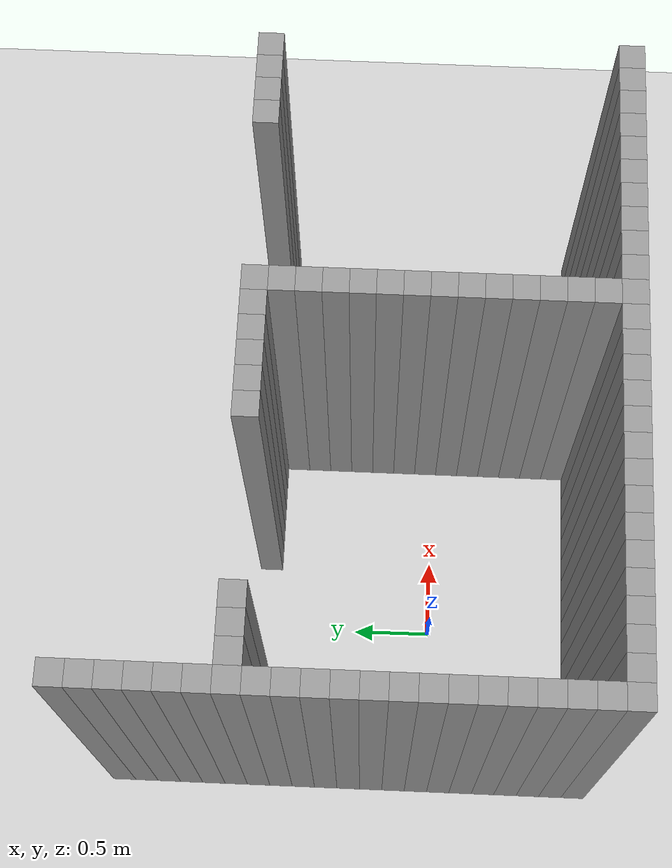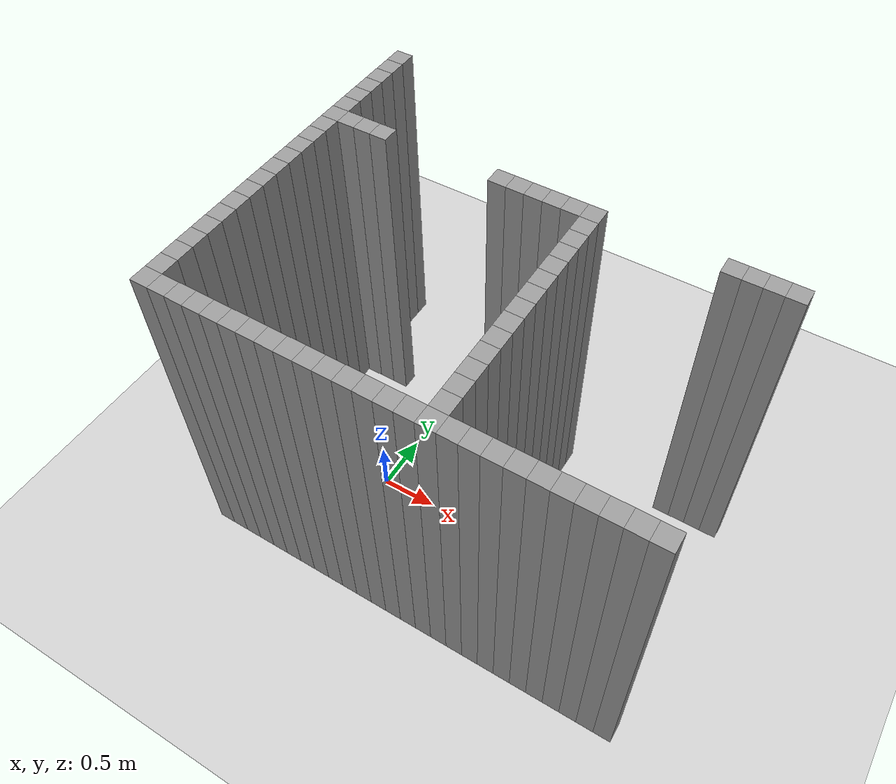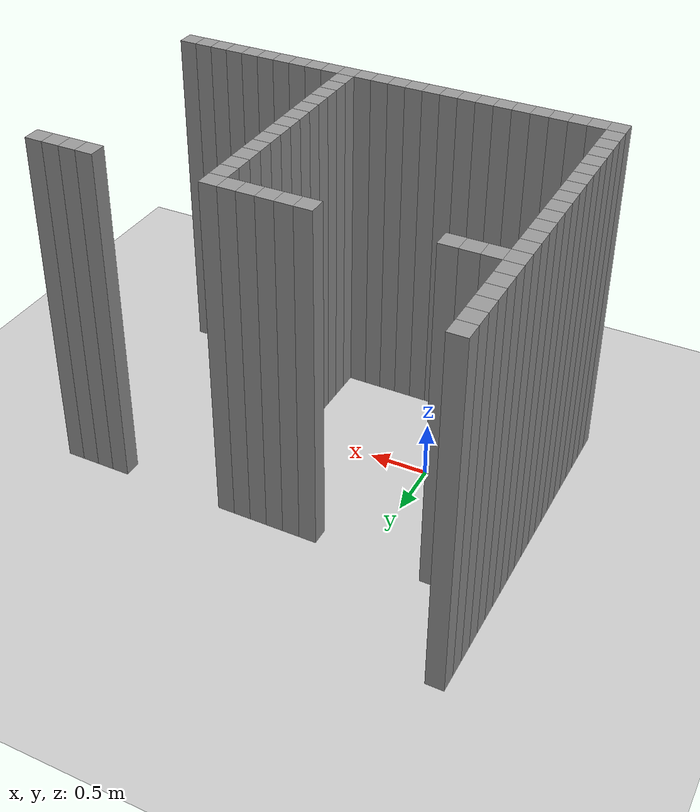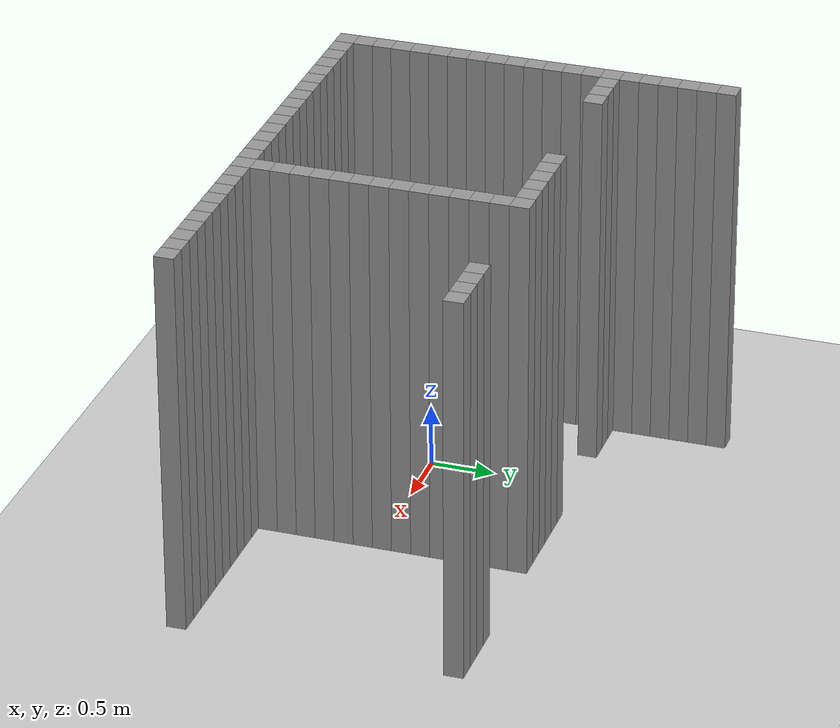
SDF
<sdf version="1.7">
 <world name="default">
  <model name="ground_plane">
   <static>1</static>
   <link name="link">
    <collision name="collision">
     <geometry><plane><normal>0 0 1</normal><size>100 100</size></plane></geometry>
     <surface>
      <contact><collide_bitmask>65535</collide_bitmask></contact>
      <friction><ode><mu>100</mu><mu2>50</mu2></ode></friction>
     </surface>
    </collision>
    <visual name="visual">
     <cast_shadows>0</cast_shadows>
     <geometry><plane><normal>0 0 1</normal><size>100 100</size></plane></geometry>
     <material>
      <script><uri>file://media/materials/scripts/gazebo.material</uri><name>Gazebo/Grey</name></script>
     </material>
    </visual>
   </link>
  </model>
  <model name="image45001">
   <pose>-1 -1 0 0 -0 0</pose>
   <link name="Wall_0">
    <collision name="Wall_0_Collision">
     <geometry><box><size>0.15 0.15 3</size></box></geometry>
     <pose>0 0 1.5 0 -0 0</pose>
    </collision>
    <visual name="Wall_0_Visual">
     <pose>0 0 1.5 0 -0 0</pose>
     <geometry><box><size>0.15 0.15 3</size></box></geometry>
     <material>
      <script><uri>file://media/materials/scripts/gazebo.material</uri><name>Gazebo/Grey</name></script>
      <ambient>1 1 1 1</ambient>
     </material>
     <meta><layer>0</layer></meta>
    </visual>
   </link>
   <link name="Wall_1">
    <collision name="Wall_1_Collision">
     <geometry><box><size>0.15 0.15 3</size></box></geometry>
     <pose>0 0 1.5 0 -0 0</pose>
    </collision>
    <visual name="Wall_1_Visual">
     <pose>0 0 1.5 0 -0 0</pose>
     <geometry><box><size>0.15 0.15 3</size></box></geometry>
     <material>
      <script><uri>file://media/materials/scripts/gazebo.material</uri><name>Gazebo/Grey</name></script>
      <ambient>1 1 1 1</ambient>
     </material>
     <meta><layer>0</layer></meta>
    </visual>
    <pose>0.0 0.15 0 0 -0 0</pose>
   </link>
   <link name="Wall_2">
    <collision name="Wall_2_Collision">
     <geometry><box><size>0.15 0.15 3</size></box></geometry>
     <pose>0 0 1.5 0 -0 0</pose>
    </collision>
    <visual name="Wall_2_Visual">
     <pose>0 0 1.5 0 -0 0</pose>
     <geometry><box><size>0.15 0.15 3</size></box></geometry>
     <material>
      <script><uri>file://media/materials/scripts/gazebo.material</uri><name>Gazebo/Grey</name></script>
      <ambient>1 1 1 1</ambient>
     </material>
     <meta><layer>0</layer></meta>
    </visual>
    <pose>0.0 0.3 0 0 -0 0</pose>
   </link>
   <link name="Wall_3">
    <collision name="Wall_3_Collision">
     <geometry><box><size>0.15 0.15 3</size></box></geometry>
     <pose>0 0 1.5 0 -0 0</pose>
    </collision>
    <visual name="Wall_3_Visual">
     <pose>0 0 1.5 0 -0 0</pose>
     <geometry><box><size>0.15 0.15 3</size></box></geometry>
     <material>
      <script><uri>file://media/materials/scripts/gazebo.material</uri><name>Gazebo/Grey</name></script>
      <ambient>1 1 1 1</ambient>
     </material>
     <meta><layer>0</layer></meta>
    </visual>
    <pose>0.0 0.44999999999999996 0 0 -0 0</pose>
   </link>
   <link name="Wall_4">
    <collision name="Wall_4_Collision">
     <geometry><box><size>0.15 0.15 3</size></box></geometry>
     <pose>0 0 1.5 0 -0 0</pose>
    </collision>
    <visual name="Wall_4_Visual">
     <pose>0 0 1.5 0 -0 0</pose>
     <geometry><box><size>0.15 0.15 3</size></box></geometry>
     <material>
      <script><uri>file://media/materials/scripts/gazebo.material</uri><name>Gazebo/Grey</name></script>
      <ambient>1 1 1 1</ambient>
     </material>
     <meta><layer>0</layer></meta>
    </visual>
    <pose>0.0 0.6 0 0 -0 0</pose>
   </link>
   <link name="Wall_5">
    <collision name="Wall_5_Collision">
     <geometry><box><size>0.15 0.15 3</size></box></geometry>
     <pose>0 0 1.5 0 -0 0</pose>
    </collision>
    <visual name="Wall_5_Visual">
     <pose>0 0 1.5 0 -0 0</pose>
     <geometry><box><size>0.15 0.15 3</size></box></geometry>
     <material>
      <script><uri>file://media/materials/scripts/gazebo.material</uri><name>Gazebo/Grey</name></script>
      <ambient>1 1 1 1</ambient>
     </material>
     <meta><layer>0</layer></meta>
    </visual>
    <pose>0.0 0.75 0 0 -0 0</pose>
   </link>
   <link name="Wall_6">
    <collision name="Wall_6_Collision">
     <geometry><box><size>0.15 0.15 3</size></box></geometry>
     <pose>0 0 1.5 0 -0 0</pose>
    </collision>
    <visual name="Wall_6_Visual">
     <pose>0 0 1.5 0 -0 0</pose>
     <geometry><box><size>0.15 0.15 3</size></box></geometry>
     <material>
      <script><uri>file://media/materials/scripts/gazebo.material</uri><name>Gazebo/Grey</name></script>
      <ambient>1 1 1 1</ambient>
     </material>
     <meta><layer>0</layer></meta>
    </visual>
    <pose>0.0 0.8999999999999999 0 0 -0 0</pose>
   </link>
   <link name="Wall_7">
    <collision name="Wall_7_Collision">
     <geometry><box><size>0.15 0.15 3</size></box></geometry>
     <pose>0 0 1.5 0 -0 0</pose>
    </collision>
    <visual name="Wall_7_Visual">
     <pose>0 0 1.5 0 -0 0</pose>
     <geometry><box><size>0.15 0.15 3</size></box></geometry>
     <material>
      <script><uri>file://media/materials/scripts/gazebo.material</uri><name>Gazebo/Grey</name></script>
      <ambient>1 1 1 1</ambient>
     </material>
     <meta><layer>0</layer></meta>
    </visual>
    <pose>0.0 1.05 0 0 -0 0</pose>
   </link>
   <link name="Wall_8">
    <collision name="Wall_8_Collision">
     <geometry><box><size>0.15 0.15 3</size></box></geometry>
     <pose>0 0 1.5 0 -0 0</pose>
    </collision>
    <visual name="Wall_8_Visual">
     <pose>0 0 1.5 0 -0 0</pose>
     <geometry><box><size>0.15 0.15 3</size></box></geometry>
     <material>
      <script><uri>file://media/materials/scripts/gazebo.material</uri><name>Gazebo/Grey</name></script>
      <ambient>1 1 1 1</ambient>
     </material>
     <meta><layer>0</layer></meta>
    </visual>
    <pose>0.0 1.2 0 0 -0 0</pose>
   </link>
   <link name="Wall_9">
    <collision name="Wall_9_Collision">
     <geometry><box><size>0.15 0.15 3</size></box></geometry>
     <pose>0 0 1.5 0 -0 0</pose>
    </collision>
    <visual name="Wall_9_Visual">
     <pose>0 0 1.5 0 -0 0</pose>
     <geometry><box><size>0.15 0.15 3</size></box></geometry>
     <material>
      <script><uri>file://media/materials/scripts/gazebo.material</uri><name>Gazebo/Grey</name></script>
      <ambient>1 1 1 1</ambient>
     </material>
     <meta><layer>0</layer></meta>
    </visual>
    <pose>0.0 1.3499999999999999 0 0 -0 0</pose>
   </link>
   <link name="Wall_10">
    <collision name="Wall_10_Collision">
     <geometry><box><size>0.15 0.15 3</size></box></geometry>
     <pose>0 0 1.5 0 -0 0</pose>
    </collision>
    <visual name="Wall_10_Visual">
     <pose>0 0 1.5 0 -0 0</pose>
     <geometry><box><size>0.15 0.15 3</size></box></geometry>
     <material>
      <script><uri>file://media/materials/scripts/gazebo.material</uri><name>Gazebo/Grey</name></script>
      <ambient>1 1 1 1</ambient>
     </material>
     <meta><layer>0</layer></meta>
    </visual>
    <pose>0.0 1.5 0 0 -0 0</pose>
   </link>
   <link name="Wall_11">
    <collision name="Wall_11_Collision">
     <geometry><box><size>0.15 0.15 3</size></box></geometry>
     <pose>0 0 1.5 0 -0 0</pose>
    </collision>
    <visual name="Wall_11_Visual">
     <pose>0 0 1.5 0 -0 0</pose>
     <geometry><box><size>0.15 0.15 3</size></box></geometry>
     <material>
      <script><uri>file://media/materials/scripts/gazebo.material</uri><name>Gazebo/Grey</name></script>
      <ambient>1 1 1 1</ambient>
     </material>
     <meta><layer>0</layer></meta>
    </visual>
    <pose>0.0 1.65 0 0 -0 0</pose>
   </link>
   <link name="Wall_12">
    <collision name="Wall_12_Collision">
     <geometry><box><size>0.15 0.15 3</size></box></geometry>
     <pose>0 0 1.5 0 -0 0</pose>
    </collision>
    <visual name="Wall_12_Visual">
     <pose>0 0 1.5 0 -0 0</pose>
     <geometry><box><size>0.15 0.15 3</size></box></geometry>
     <material>
      <script><uri>file://media/materials/scripts/gazebo.material</uri><name>Gazebo/Grey</name></script>
      <ambient>1 1 1 1</ambient>
     </material>
     <meta><layer>0</layer></meta>
    </visual>
    <pose>0.0 1.7999999999999998 0 0 -0 0</pose>
   </link>
   <link name="Wall_13">
    <collision name="Wall_13_Collision">
     <geometry><box><size>0.15 0.15 3</size></box></geometry>
     <pose>0 0 1.5 0 -0 0</pose>
    </collision>
    <visual name="Wall_13_Visual">
     <pose>0 0 1.5 0 -0 0</pose>
     <geometry><box><size>0.15 0.15 3</size></box></geometry>
     <material>
      <script><uri>file://media/materials/scripts/gazebo.material</uri><name>Gazebo/Grey</name></script>
      <ambient>1 1 1 1</ambient>
     </material>
     <meta><layer>0</layer></meta>
    </visual>
    <pose>0.0 1.95 0 0 -0 0</pose>
   </link>
   <link name="Wall_14">
    <collision name="Wall_14_Collision">
     <geometry><box><size>0.15 0.15 3</size></box></geometry>
     <pose>0 0 1.5 0 -0 0</pose>
    </collision>
    <visual name="Wall_14_Visual">
     <pose>0 0 1.5 0 -0 0</pose>
     <geometry><box><size>0.15 0.15 3</size></box></geometry>
     <material>
      <script><uri>file://media/materials/scripts/gazebo.material</uri><name>Gazebo/Grey</name></script>
      <ambient>1 1 1 1</ambient>
     </material>
     <meta><layer>0</layer></meta>
    </visual>
    <pose>0.0 2.1 0 0 -0 0</pose>
   </link>
   <link name="Wall_15">
    <collision name="Wall_15_Collision">
     <geometry><box><size>0.15 0.15 3</size></box></geometry>
     <pose>0 0 1.5 0 -0 0</pose>
    </collision>
    <visual name="Wall_15_Visual">
     <pose>0 0 1.5 0 -0 0</pose>
     <geometry><box><size>0.15 0.15 3</size></box></geometry>
     <material>
      <script><uri>file://media/materials/scripts/gazebo.material</uri><name>Gazebo/Grey</name></script>
      <ambient>1 1 1 1</ambient>
     </material>
     <meta><layer>0</layer></meta>
    </visual>
    <pose>0.0 2.25 0 0 -0 0</pose>
   </link>
   <link name="Wall_16">
    <collision name="Wall_16_Collision">
     <geometry><box><size>0.15 0.15 3</size></box></geometry>
     <pose>0 0 1.5 0 -0 0</pose>
    </collision>
    <visual name="Wall_16_Visual">
     <pose>0 0 1.5 0 -0 0</pose>
     <geometry><box><size>0.15 0.15 3</size></box></geometry>
     <material>
      <script><uri>file://media/materials/scripts/gazebo.material</uri><name>Gazebo/Grey</name></script>
      <ambient>1 1 1 1</ambient>
     </material>
     <meta><layer>0</layer></meta>
    </visual>
    <pose>0.0 2.4 0 0 -0 0</pose>
   </link>
   <link name="Wall_17">
    <collision name="Wall_17_Collision">
     <geometry><box><size>0.15 0.15 3</size></box></geometry>
     <pose>0 0 1.5 0 -0 0</pose>
    </collision>
    <visual name="Wall_17_Visual">
     <pose>0 0 1.5 0 -0 0</pose>
     <geometry><box><size>0.15 0.15 3</size></box></geometry>
     <material>
      <script><uri>file://media/materials/scripts/gazebo.material</uri><name>Gazebo/Grey</name></script>
      <ambient>1 1 1 1</ambient>
     </material>
     <meta><layer>0</layer></meta>
    </visual>
    <pose>0.0 2.55 0 0 -0 0</pose>
   </link>
   <link name="Wall_18">
    <collision name="Wall_18_Collision">
     <geometry><box><size>0.15 0.15 3</size></box></geometry>
     <pose>0 0 1.5 0 -0 0</pose>
    </collision>
    <visual name="Wall_18_Visual">
     <pose>0 0 1.5 0 -0 0</pose>
     <geometry><box><size>0.15 0.15 3</size></box></geometry>
     <material>
      <script><uri>file://media/materials/scripts/gazebo.material</uri><name>Gazebo/Grey</name></script>
      <ambient>1 1 1 1</ambient>
     </material>
     <meta><layer>0</layer></meta>
    </visual>
    <pose>0.0 2.6999999999999997 0 0 -0 0</pose>
   </link>
   <link name="Wall_19">
    <collision name="Wall_19_Collision">
     <geometry><box><size>0.15 0.15 3</size></box></geometry>
     <pose>0 0 1.5 0 -0 0</pose>
    </collision>
    <visual name="Wall_19_Visual">
     <pose>0 0 1.5 0 -0 0</pose>
     <geometry><box><size>0.15 0.15 3</size></box></geometry>
     <material>
      <script><uri>file://media/materials/scripts/gazebo.material</uri><name>Gazebo/Grey</name></script>
      <ambient>1 1 1 1</ambient>
     </material>
     <meta><layer>0</layer></meta>
    </visual>
    <pose>0.0 2.85 0 0 -0 0</pose>
   </link>
   <link name="Wall_20">
    <collision name="Wall_20_Collision">
     <geometry><box><size>0.15 0.15 3</size></box></geometry>
     <pose>0 0 1.5 0 -0 0</pose>
    </collision>
    <visual name="Wall_20_Visual">
     <pose>0 0 1.5 0 -0 0</pose>
     <geometry><box><size>0.15 0.15 3</size></box></geometry>
     <material>
      <script><uri>file://media/materials/scripts/gazebo.material</uri><name>Gazebo/Grey</name></script>
      <ambient>1 1 1 1</ambient>
     </material>
     <meta><layer>0</layer></meta>
    </visual>
    <pose>0.0 3.0 0 0 -0 0</pose>
   </link>
   <link name="Wall_60">
    <collision name="Wall_60_Collision">
     <geometry><box><size>0.15 0.15 3</size></box></geometry>
     <pose>0 0 1.5 0 -0 0</pose>
    </collision>
    <visual name="Wall_60_Visual">
     <pose>0 0 1.5 0 -0 0</pose>
     <geometry><box><size>0.15 0.15 3</size></box></geometry>
     <material>
      <script><uri>file://media/materials/scripts/gazebo.material</uri><name>Gazebo/Grey</name></script>
      <ambient>1 1 1 1</ambient>
     </material>
     <meta><layer>0</layer></meta>
    </visual>
    <pose>0.15 0.0 0 0 -0 0</pose>
   </link>
   <link name="Wall_61">
    <collision name="Wall_61_Collision">
     <geometry><box><size>0.15 0.15 3</size></box></geometry>
     <pose>0 0 1.5 0 -0 0</pose>
    </collision>
    <visual name="Wall_61_Visual">
     <pose>0 0 1.5 0 -0 0</pose>
     <geometry><box><size>0.15 0.15 3</size></box></geometry>
     <material>
      <script><uri>file://media/materials/scripts/gazebo.material</uri><name>Gazebo/Grey</name></script>
      <ambient>1 1 1 1</ambient>
     </material>
     <meta><layer>0</layer></meta>
    </visual>
    <pose>0.15 2.1 0 0 -0 0</pose>
   </link>
   <link name="Wall_65">
    <collision name="Wall_65_Collision">
     <geometry><box><size>0.15 0.15 3</size></box></geometry>
     <pose>0 0 1.5 0 -0 0</pose>
    </collision>
    <visual name="Wall_65_Visual">
     <pose>0 0 1.5 0 -0 0</pose>
     <geometry><box><size>0.15 0.15 3</size></box></geometry>
     <material>
      <script><uri>file://media/materials/scripts/gazebo.material</uri><name>Gazebo/Grey</name></script>
      <ambient>1 1 1 1</ambient>
     </material>
     <meta><layer>0</layer></meta>
    </visual>
    <pose>0.3 0.0 0 0 -0 0</pose>
   </link>
   <link name="Wall_66">
    <collision name="Wall_66_Collision">
     <geometry><box><size>0.15 0.15 3</size></box></geometry>
     <pose>0 0 1.5 0 -0 0</pose>
    </collision>
    <visual name="Wall_66_Visual">
     <pose>0 0 1.5 0 -0 0</pose>
     <geometry><box><size>0.15 0.15 3</size></box></geometry>
     <material>
      <script><uri>file://media/materials/scripts/gazebo.material</uri><name>Gazebo/Grey</name></script>
      <ambient>1 1 1 1</ambient>
     </material>
     <meta><layer>0</layer></meta>
    </visual>
    <pose>0.3 2.1 0 0 -0 0</pose>
   </link>
   <link name="Wall_70">
    <collision name="Wall_70_Collision">
     <geometry><box><size>0.15 0.15 3</size></box></geometry>
     <pose>0 0 1.5 0 -0 0</pose>
    </collision>
    <visual name="Wall_70_Visual">
     <pose>0 0 1.5 0 -0 0</pose>
     <geometry><box><size>0.15 0.15 3</size></box></geometry>
     <material>
      <script><uri>file://media/materials/scripts/gazebo.material</uri><name>Gazebo/Grey</name></script>
      <ambient>1 1 1 1</ambient>
     </material>
     <meta><layer>0</layer></meta>
    </visual>
    <pose>0.44999999999999996 0.0 0 0 -0 0</pose>
   </link>
   <link name="Wall_71">
    <collision name="Wall_71_Collision">
     <geometry><box><size>0.15 0.15 3</size></box></geometry>
     <pose>0 0 1.5 0 -0 0</pose>
    </collision>
    <visual name="Wall_71_Visual">
     <pose>0 0 1.5 0 -0 0</pose>
     <geometry><box><size>0.15 0.15 3</size></box></geometry>
     <material>
      <script><uri>file://media/materials/scripts/gazebo.material</uri><name>Gazebo/Grey</name></script>
      <ambient>1 1 1 1</ambient>
     </material>
     <meta><layer>0</layer></meta>
    </visual>
    <pose>0.44999999999999996 2.1 0 0 -0 0</pose>
   </link>
   <link name="Wall_75">
    <collision name="Wall_75_Collision">
     <geometry><box><size>0.15 0.15 3</size></box></geometry>
     <pose>0 0 1.5 0 -0 0</pose>
    </collision>
    <visual name="Wall_75_Visual">
     <pose>0 0 1.5 0 -0 0</pose>
     <geometry><box><size>0.15 0.15 3</size></box></geometry>
     <material>
      <script><uri>file://media/materials/scripts/gazebo.material</uri><name>Gazebo/Grey</name></script>
      <ambient>1 1 1 1</ambient>
     </material>
     <meta><layer>0</layer></meta>
    </visual>
    <pose>0.6 0.0 0 0 -0 0</pose>
   </link>
   <link name="Wall_79">
    <collision name="Wall_79_Collision">
     <geometry><box><size>0.15 0.15 3</size></box></geometry>
     <pose>0 0 1.5 0 -0 0</pose>
    </collision>
    <visual name="Wall_79_Visual">
     <pose>0 0 1.5 0 -0 0</pose>
     <geometry><box><size>0.15 0.15 3</size></box></geometry>
     <material>
      <script><uri>file://media/materials/scripts/gazebo.material</uri><name>Gazebo/Grey</name></script>
      <ambient>1 1 1 1</ambient>
     </material>
     <meta><layer>0</layer></meta>
    </visual>
    <pose>0.75 0.0 0 0 -0 0</pose>
   </link>
   <link name="Wall_83">
    <collision name="Wall_83_Collision">
     <geometry><box><size>0.15 0.15 3</size></box></geometry>
     <pose>0 0 1.5 0 -0 0</pose>
    </collision>
    <visual name="Wall_83_Visual">
     <pose>0 0 1.5 0 -0 0</pose>
     <geometry><box><size>0.15 0.15 3</size></box></geometry>
     <material>
      <script><uri>file://media/materials/scripts/gazebo.material</uri><name>Gazebo/Grey</name></script>
      <ambient>1 1 1 1</ambient>
     </material>
     <meta><layer>0</layer></meta>
    </visual>
    <pose>0.8999999999999999 0.0 0 0 -0 0</pose>
   </link>
   <link name="Wall_87">
    <collision name="Wall_87_Collision">
     <geometry><box><size>0.15 0.15 3</size></box></geometry>
     <pose>0 0 1.5 0 -0 0</pose>
    </collision>
    <visual name="Wall_87_Visual">
     <pose>0 0 1.5 0 -0 0</pose>
     <geometry><box><size>0.15 0.15 3</size></box></geometry>
     <material>
      <script><uri>file://media/materials/scripts/gazebo.material</uri><name>Gazebo/Grey</name></script>
      <ambient>1 1 1 1</ambient>
     </material>
     <meta><layer>0</layer></meta>
    </visual>
    <pose>1.05 0.0 0 0 -0 0</pose>
   </link>
   <link name="Wall_91">
    <collision name="Wall_91_Collision">
     <geometry><box><size>0.15 0.15 3</size></box></geometry>
     <pose>0 0 1.5 0 -0 0</pose>
    </collision>
    <visual name="Wall_91_Visual">
     <pose>0 0 1.5 0 -0 0</pose>
     <geometry><box><size>0.15 0.15 3</size></box></geometry>
     <material>
      <script><uri>file://media/materials/scripts/gazebo.material</uri><name>Gazebo/Grey</name></script>
      <ambient>1 1 1 1</ambient>
     </material>
     <meta><layer>0</layer></meta>
    </visual>
    <pose>1.2 0.0 0 0 -0 0</pose>
   </link>
   <link name="Wall_95">
    <collision name="Wall_95_Collision">
     <geometry><box><size>0.15 0.15 3</size></box></geometry>
     <pose>0 0 1.5 0 -0 0</pose>
    </collision>
    <visual name="Wall_95_Visual">
     <pose>0 0 1.5 0 -0 0</pose>
     <geometry><box><size>0.15 0.15 3</size></box></geometry>
     <material>
      <script><uri>file://media/materials/scripts/gazebo.material</uri><name>Gazebo/Grey</name></script>
      <ambient>1 1 1 1</ambient>
     </material>
     <meta><layer>0</layer></meta>
    </visual>
    <pose>1.3499999999999999 0.0 0 0 -0 0</pose>
   </link>
   <link name="Wall_109">
    <collision name="Wall_109_Collision">
     <geometry><box><size>0.15 0.15 3</size></box></geometry>
     <pose>0 0 1.5 0 -0 0</pose>
    </collision>
    <visual name="Wall_109_Visual">
     <pose>0 0 1.5 0 -0 0</pose>
     <geometry><box><size>0.15 0.15 3</size></box></geometry>
     <material>
      <script><uri>file://media/materials/scripts/gazebo.material</uri><name>Gazebo/Grey</name></script>
      <ambient>1 1 1 1</ambient>
     </material>
     <meta><layer>0</layer></meta>
    </visual>
    <pose>1.5 0.0 0 0 -0 0</pose>
   </link>
   <link name="Wall_110">
    <collision name="Wall_110_Collision">
     <geometry><box><size>0.15 0.15 3</size></box></geometry>
     <pose>0 0 1.5 0 -0 0</pose>
    </collision>
    <visual name="Wall_110_Visual">
     <pose>0 0 1.5 0 -0 0</pose>
     <geometry><box><size>0.15 0.15 3</size></box></geometry>
     <material>
      <script><uri>file://media/materials/scripts/gazebo.material</uri><name>Gazebo/Grey</name></script>
      <ambient>1 1 1 1</ambient>
     </material>
     <meta><layer>0</layer></meta>
    </visual>
    <pose>1.5 2.1 0 0 -0 0</pose>
   </link>
   <link name="Wall_115">
    <collision name="Wall_115_Collision">
     <geometry><box><size>0.15 0.15 3</size></box></geometry>
     <pose>0 0 1.5 0 -0 0</pose>
    </collision>
    <visual name="Wall_115_Visual">
     <pose>0 0 1.5 0 -0 0</pose>
     <geometry><box><size>0.15 0.15 3</size></box></geometry>
     <material>
      <script><uri>file://media/materials/scripts/gazebo.material</uri><name>Gazebo/Grey</name></script>
      <ambient>1 1 1 1</ambient>
     </material>
     <meta><layer>0</layer></meta>
    </visual>
    <pose>1.65 0.0 0 0 -0 0</pose>
   </link>
   <link name="Wall_116">
    <collision name="Wall_116_Collision">
     <geometry><box><size>0.15 0.15 3</size></box></geometry>
     <pose>0 0 1.5 0 -0 0</pose>
    </collision>
    <visual name="Wall_116_Visual">
     <pose>0 0 1.5 0 -0 0</pose>
     <geometry><box><size>0.15 0.15 3</size></box></geometry>
     <material>
      <script><uri>file://media/materials/scripts/gazebo.material</uri><name>Gazebo/Grey</name></script>
      <ambient>1 1 1 1</ambient>
     </material>
     <meta><layer>0</layer></meta>
    </visual>
    <pose>1.65 2.1 0 0 -0 0</pose>
   </link>
   <link name="Wall_120">
    <collision name="Wall_120_Collision">
     <geometry><box><size>0.15 0.15 3</size></box></geometry>
     <pose>0 0 1.5 0 -0 0</pose>
    </collision>
    <visual name="Wall_120_Visual">
     <pose>0 0 1.5 0 -0 0</pose>
     <geometry><box><size>0.15 0.15 3</size></box></geometry>
     <material>
      <script><uri>file://media/materials/scripts/gazebo.material</uri><name>Gazebo/Grey</name></script>
      <ambient>1 1 1 1</ambient>
     </material>
     <meta><layer>0</layer></meta>
    </visual>
    <pose>1.7999999999999998 0.0 0 0 -0 0</pose>
   </link>
   <link name="Wall_121">
    <collision name="Wall_121_Collision">
     <geometry><box><size>0.15 0.15 3</size></box></geometry>
     <pose>0 0 1.5 0 -0 0</pose>
    </collision>
    <visual name="Wall_121_Visual">
     <pose>0 0 1.5 0 -0 0</pose>
     <geometry><box><size>0.15 0.15 3</size></box></geometry>
     <material>
      <script><uri>file://media/materials/scripts/gazebo.material</uri><name>Gazebo/Grey</name></script>
      <ambient>1 1 1 1</ambient>
     </material>
     <meta><layer>0</layer></meta>
    </visual>
    <pose>1.7999999999999998 2.1 0 0 -0 0</pose>
   </link>
   <link name="Wall_125">
    <collision name="Wall_125_Collision">
     <geometry><box><size>0.15 0.15 3</size></box></geometry>
     <pose>0 0 1.5 0 -0 0</pose>
    </collision>
    <visual name="Wall_125_Visual">
     <pose>0 0 1.5 0 -0 0</pose>
     <geometry><box><size>0.15 0.15 3</size></box></geometry>
     <material>
      <script><uri>file://media/materials/scripts/gazebo.material</uri><name>Gazebo/Grey</name></script>
      <ambient>1 1 1 1</ambient>
     </material>
     <meta><layer>0</layer></meta>
    </visual>
    <pose>1.95 0.0 0 0 -0 0</pose>
   </link>
   <link name="Wall_126">
    <collision name="Wall_126_Collision">
     <geometry><box><size>0.15 0.15 3</size></box></geometry>
     <pose>0 0 1.5 0 -0 0</pose>
    </collision>
    <visual name="Wall_126_Visual">
     <pose>0 0 1.5 0 -0 0</pose>
     <geometry><box><size>0.15 0.15 3</size></box></geometry>
     <material>
      <script><uri>file://media/materials/scripts/gazebo.material</uri><name>Gazebo/Grey</name></script>
      <ambient>1 1 1 1</ambient>
     </material>
     <meta><layer>0</layer></meta>
    </visual>
    <pose>1.95 2.1 0 0 -0 0</pose>
   </link>
   <link name="Wall_139">
    <collision name="Wall_139_Collision">
     <geometry><box><size>0.15 0.15 3</size></box></geometry>
     <pose>0 0 1.5 0 -0 0</pose>
    </collision>
    <visual name="Wall_139_Visual">
     <pose>0 0 1.5 0 -0 0</pose>
     <geometry><box><size>0.15 0.15 3</size></box></geometry>
     <material>
      <script><uri>file://media/materials/scripts/gazebo.material</uri><name>Gazebo/Grey</name></script>
      <ambient>1 1 1 1</ambient>
     </material>
     <meta><layer>0</layer></meta>
    </visual>
    <pose>2.1 0.0 0 0 -0 0</pose>
   </link>
   <link name="Wall_140">
    <collision name="Wall_140_Collision">
     <geometry><box><size>0.15 0.15 3</size></box></geometry>
     <pose>0 0 1.5 0 -0 0</pose>
    </collision>
    <visual name="Wall_140_Visual">
     <pose>0 0 1.5 0 -0 0</pose>
     <geometry><box><size>0.15 0.15 3</size></box></geometry>
     <material>
      <script><uri>file://media/materials/scripts/gazebo.material</uri><name>Gazebo/Grey</name></script>
      <ambient>1 1 1 1</ambient>
     </material>
     <meta><layer>0</layer></meta>
    </visual>
    <pose>2.1 2.1 0 0 -0 0</pose>
   </link>
   <link name="Wall_142">
    <collision name="Wall_142_Collision">
     <geometry><box><size>0.15 0.15 3</size></box></geometry>
     <pose>0 0 1.5 0 -0 0</pose>
    </collision>
    <visual name="Wall_142_Visual">
     <pose>0 0 1.5 0 -0 0</pose>
     <geometry><box><size>0.15 0.15 3</size></box></geometry>
     <material>
      <script><uri>file://media/materials/scripts/gazebo.material</uri><name>Gazebo/Grey</name></script>
      <ambient>1 1 1 1</ambient>
     </material>
     <meta><layer>0</layer></meta>
    </visual>
    <pose>2.25 0.0 0 0 -0 0</pose>
   </link>
   <link name="Wall_143">
    <collision name="Wall_143_Collision">
     <geometry><box><size>0.15 0.15 3</size></box></geometry>
     <pose>0 0 1.5 0 -0 0</pose>
    </collision>
    <visual name="Wall_143_Visual">
     <pose>0 0 1.5 0 -0 0</pose>
     <geometry><box><size>0.15 0.15 3</size></box></geometry>
     <material>
      <script><uri>file://media/materials/scripts/gazebo.material</uri><name>Gazebo/Grey</name></script>
      <ambient>1 1 1 1</ambient>
     </material>
     <meta><layer>0</layer></meta>
    </visual>
    <pose>2.25 0.15 0 0 -0 0</pose>
   </link>
   <link name="Wall_144">
    <collision name="Wall_144_Collision">
     <geometry><box><size>0.15 0.15 3</size></box></geometry>
     <pose>0 0 1.5 0 -0 0</pose>
    </collision>
    <visual name="Wall_144_Visual">
     <pose>0 0 1.5 0 -0 0</pose>
     <geometry><box><size>0.15 0.15 3</size></box></geometry>
     <material>
      <script><uri>file://media/materials/scripts/gazebo.material</uri><name>Gazebo/Grey</name></script>
      <ambient>1 1 1 1</ambient>
     </material>
     <meta><layer>0</layer></meta>
    </visual>
    <pose>2.25 0.3 0 0 -0 0</pose>
   </link>
   <link name="Wall_145">
    <collision name="Wall_145_Collision">
     <geometry><box><size>0.15 0.15 3</size></box></geometry>
     <pose>0 0 1.5 0 -0 0</pose>
    </collision>
    <visual name="Wall_145_Visual">
     <pose>0 0 1.5 0 -0 0</pose>
     <geometry><box><size>0.15 0.15 3</size></box></geometry>
     <material>
      <script><uri>file://media/materials/scripts/gazebo.material</uri><name>Gazebo/Grey</name></script>
      <ambient>1 1 1 1</ambient>
     </material>
     <meta><layer>0</layer></meta>
    </visual>
    <pose>2.25 0.44999999999999996 0 0 -0 0</pose>
   </link>
   <link name="Wall_146">
    <collision name="Wall_146_Collision">
     <geometry><box><size>0.15 0.15 3</size></box></geometry>
     <pose>0 0 1.5 0 -0 0</pose>
    </collision>
    <visual name="Wall_146_Visual">
     <pose>0 0 1.5 0 -0 0</pose>
     <geometry><box><size>0.15 0.15 3</size></box></geometry>
     <material>
      <script><uri>file://media/materials/scripts/gazebo.material</uri><name>Gazebo/Grey</name></script>
      <ambient>1 1 1 1</ambient>
     </material>
     <meta><layer>0</layer></meta>
    </visual>
    <pose>2.25 0.6 0 0 -0 0</pose>
   </link>
   <link name="Wall_147">
    <collision name="Wall_147_Collision">
     <geometry><box><size>0.15 0.15 3</size></box></geometry>
     <pose>0 0 1.5 0 -0 0</pose>
    </collision>
    <visual name="Wall_147_Visual">
     <pose>0 0 1.5 0 -0 0</pose>
     <geometry><box><size>0.15 0.15 3</size></box></geometry>
     <material>
      <script><uri>file://media/materials/scripts/gazebo.material</uri><name>Gazebo/Grey</name></script>
      <ambient>1 1 1 1</ambient>
     </material>
     <meta><layer>0</layer></meta>
    </visual>
    <pose>2.25 0.75 0 0 -0 0</pose>
   </link>
   <link name="Wall_148">
    <collision name="Wall_148_Collision">
     <geometry><box><size>0.15 0.15 3</size></box></geometry>
     <pose>0 0 1.5 0 -0 0</pose>
    </collision>
    <visual name="Wall_148_Visual">
     <pose>0 0 1.5 0 -0 0</pose>
     <geometry><box><size>0.15 0.15 3</size></box></geometry>
     <material>
      <script><uri>file://media/materials/scripts/gazebo.material</uri><name>Gazebo/Grey</name></script>
      <ambient>1 1 1 1</ambient>
     </material>
     <meta><layer>0</layer></meta>
    </visual>
    <pose>2.25 0.8999999999999999 0 0 -0 0</pose>
   </link>
   <link name="Wall_149">
    <collision name="Wall_149_Collision">
     <geometry><box><size>0.15 0.15 3</size></box></geometry>
     <pose>0 0 1.5 0 -0 0</pose>
    </collision>
    <visual name="Wall_149_Visual">
     <pose>0 0 1.5 0 -0 0</pose>
     <geometry><box><size>0.15 0.15 3</size></box></geometry>
     <material>
      <script><uri>file://media/materials/scripts/gazebo.material</uri><name>Gazebo/Grey</name></script>
      <ambient>1 1 1 1</ambient>
     </material>
     <meta><layer>0</layer></meta>
    </visual>
    <pose>2.25 1.05 0 0 -0 0</pose>
   </link>
   <link name="Wall_150">
    <collision name="Wall_150_Collision">
     <geometry><box><size>0.15 0.15 3</size></box></geometry>
     <pose>0 0 1.5 0 -0 0</pose>
    </collision>
    <visual name="Wall_150_Visual">
     <pose>0 0 1.5 0 -0 0</pose>
     <geometry><box><size>0.15 0.15 3</size></box></geometry>
     <material>
      <script><uri>file://media/materials/scripts/gazebo.material</uri><name>Gazebo/Grey</name></script>
      <ambient>1 1 1 1</ambient>
     </material>
     <meta><layer>0</layer></meta>
    </visual>
    <pose>2.25 1.2 0 0 -0 0</pose>
   </link>
   <link name="Wall_151">
    <collision name="Wall_151_Collision">
     <geometry><box><size>0.15 0.15 3</size></box></geometry>
     <pose>0 0 1.5 0 -0 0</pose>
    </collision>
    <visual name="Wall_151_Visual">
     <pose>0 0 1.5 0 -0 0</pose>
     <geometry><box><size>0.15 0.15 3</size></box></geometry>
     <material>
      <script><uri>file://media/materials/scripts/gazebo.material</uri><name>Gazebo/Grey</name></script>
      <ambient>1 1 1 1</ambient>
     </material>
     <meta><layer>0</layer></meta>
    </visual>
    <pose>2.25 1.3499999999999999 0 0 -0 0</pose>
   </link>
   <link name="Wall_152">
    <collision name="Wall_152_Collision">
     <geometry><box><size>0.15 0.15 3</size></box></geometry>
     <pose>0 0 1.5 0 -0 0</pose>
    </collision>
    <visual name="Wall_152_Visual">
     <pose>0 0 1.5 0 -0 0</pose>
     <geometry><box><size>0.15 0.15 3</size></box></geometry>
     <material>
      <script><uri>file://media/materials/scripts/gazebo.material</uri><name>Gazebo/Grey</name></script>
      <ambient>1 1 1 1</ambient>
     </material>
     <meta><layer>0</layer></meta>
    </visual>
    <pose>2.25 1.5 0 0 -0 0</pose>
   </link>
   <link name="Wall_153">
    <collision name="Wall_153_Collision">
     <geometry><box><size>0.15 0.15 3</size></box></geometry>
     <pose>0 0 1.5 0 -0 0</pose>
    </collision>
    <visual name="Wall_153_Visual">
     <pose>0 0 1.5 0 -0 0</pose>
     <geometry><box><size>0.15 0.15 3</size></box></geometry>
     <material>
      <script><uri>file://media/materials/scripts/gazebo.material</uri><name>Gazebo/Grey</name></script>
      <ambient>1 1 1 1</ambient>
     </material>
     <meta><layer>0</layer></meta>
    </visual>
    <pose>2.25 1.65 0 0 -0 0</pose>
   </link>
   <link name="Wall_154">
    <collision name="Wall_154_Collision">
     <geometry><box><size>0.15 0.15 3</size></box></geometry>
     <pose>0 0 1.5 0 -0 0</pose>
    </collision>
    <visual name="Wall_154_Visual">
     <pose>0 0 1.5 0 -0 0</pose>
     <geometry><box><size>0.15 0.15 3</size></box></geometry>
     <material>
      <script><uri>file://media/materials/scripts/gazebo.material</uri><name>Gazebo/Grey</name></script>
      <ambient>1 1 1 1</ambient>
     </material>
     <meta><layer>0</layer></meta>
    </visual>
    <pose>2.25 1.7999999999999998 0 0 -0 0</pose>
   </link>
   <link name="Wall_155">
    <collision name="Wall_155_Collision">
     <geometry><box><size>0.15 0.15 3</size></box></geometry>
     <pose>0 0 1.5 0 -0 0</pose>
    </collision>
    <visual name="Wall_155_Visual">
     <pose>0 0 1.5 0 -0 0</pose>
     <geometry><box><size>0.15 0.15 3</size></box></geometry>
     <material>
      <script><uri>file://media/materials/scripts/gazebo.material</uri><name>Gazebo/Grey</name></script>
      <ambient>1 1 1 1</ambient>
     </material>
     <meta><layer>0</layer></meta>
    </visual>
    <pose>2.25 1.95 0 0 -0 0</pose>
   </link>
   <link name="Wall_156">
    <collision name="Wall_156_Collision">
     <geometry><box><size>0.15 0.15 3</size></box></geometry>
     <pose>0 0 1.5 0 -0 0</pose>
    </collision>
    <visual name="Wall_156_Visual">
     <pose>0 0 1.5 0 -0 0</pose>
     <geometry><box><size>0.15 0.15 3</size></box></geometry>
     <material>
      <script><uri>file://media/materials/scripts/gazebo.material</uri><name>Gazebo/Grey</name></script>
      <ambient>1 1 1 1</ambient>
     </material>
     <meta><layer>0</layer></meta>
    </visual>
    <pose>2.25 2.1 0 0 -0 0</pose>
   </link>
   <link name="Wall_158">
    <collision name="Wall_158_Collision">
     <geometry><box><size>0.15 0.15 3</size></box></geometry>
     <pose>0 0 1.5 0 -0 0</pose>
    </collision>
    <visual name="Wall_158_Visual">
     <pose>0 0 1.5 0 -0 0</pose>
     <geometry><box><size>0.15 0.15 3</size></box></geometry>
     <material>
      <script><uri>file://media/materials/scripts/gazebo.material</uri><name>Gazebo/Grey</name></script>
      <ambient>1 1 1 1</ambient>
     </material>
     <meta><layer>0</layer></meta>
    </visual>
    <pose>2.4 0.0 0 0 -0 0</pose>
   </link>
   <link name="Wall_160">
    <collision name="Wall_160_Collision">
     <geometry><box><size>0.15 0.15 3</size></box></geometry>
     <pose>0 0 1.5 0 -0 0</pose>
    </collision>
    <visual name="Wall_160_Visual">
     <pose>0 0 1.5 0 -0 0</pose>
     <geometry><box><size>0.15 0.15 3</size></box></geometry>
     <material>
      <script><uri>file://media/materials/scripts/gazebo.material</uri><name>Gazebo/Grey</name></script>
      <ambient>1 1 1 1</ambient>
     </material>
     <meta><layer>0</layer></meta>
    </visual>
    <pose>2.55 0.0 0 0 -0 0</pose>
   </link>
   <link name="Wall_162">
    <collision name="Wall_162_Collision">
     <geometry><box><size>0.15 0.15 3</size></box></geometry>
     <pose>0 0 1.5 0 -0 0</pose>
    </collision>
    <visual name="Wall_162_Visual">
     <pose>0 0 1.5 0 -0 0</pose>
     <geometry><box><size>0.15 0.15 3</size></box></geometry>
     <material>
      <script><uri>file://media/materials/scripts/gazebo.material</uri><name>Gazebo/Grey</name></script>
      <ambient>1 1 1 1</ambient>
     </material>
     <meta><layer>0</layer></meta>
    </visual>
    <pose>2.6999999999999997 0.0 0 0 -0 0</pose>
   </link>
   <link name="Wall_165">
    <collision name="Wall_165_Collision">
     <geometry><box><size>0.15 0.15 3</size></box></geometry>
     <pose>0 0 1.5 0 -0 0</pose>
    </collision>
    <visual name="Wall_165_Visual">
     <pose>0 0 1.5 0 -0 0</pose>
     <geometry><box><size>0.15 0.15 3</size></box></geometry>
     <material>
      <script><uri>file://media/materials/scripts/gazebo.material</uri><name>Gazebo/Grey</name></script>
      <ambient>1 1 1 1</ambient>
     </material>
     <meta><layer>0</layer></meta>
    </visual>
    <pose>2.85 0.0 0 0 -0 0</pose>
   </link>
   <link name="Wall_177">
    <collision name="Wall_177_Collision">
     <geometry><box><size>0.15 0.15 3</size></box></geometry>
     <pose>0 0 1.5 0 -0 0</pose>
    </collision>
    <visual name="Wall_177_Visual">
     <pose>0 0 1.5 0 -0 0</pose>
     <geometry><box><size>0.15 0.15 3</size></box></geometry>
     <material>
      <script><uri>file://media/materials/scripts/gazebo.material</uri><name>Gazebo/Grey</name></script>
      <ambient>1 1 1 1</ambient>
     </material>
     <meta><layer>0</layer></meta>
    </visual>
    <pose>3.0 0.0 0 0 -0 0</pose>
   </link>
   <link name="Wall_180">
    <collision name="Wall_180_Collision">
     <geometry><box><size>0.15 0.15 3</size></box></geometry>
     <pose>0 0 1.5 0 -0 0</pose>
    </collision>
    <visual name="Wall_180_Visual">
     <pose>0 0 1.5 0 -0 0</pose>
     <geometry><box><size>0.15 0.15 3</size></box></geometry>
     <material>
      <script><uri>file://media/materials/scripts/gazebo.material</uri><name>Gazebo/Grey</name></script>
      <ambient>1 1 1 1</ambient>
     </material>
     <meta><layer>0</layer></meta>
    </visual>
    <pose>3.15 0.0 0 0 -0 0</pose>
   </link>
   <link name="Wall_182">
    <collision name="Wall_182_Collision">
     <geometry><box><size>0.15 0.15 3</size></box></geometry>
     <pose>0 0 1.5 0 -0 0</pose>
    </collision>
    <visual name="Wall_182_Visual">
     <pose>0 0 1.5 0 -0 0</pose>
     <geometry><box><size>0.15 0.15 3</size></box></geometry>
     <material>
      <script><uri>file://media/materials/scripts/gazebo.material</uri><name>Gazebo/Grey</name></script>
      <ambient>1 1 1 1</ambient>
     </material>
     <meta><layer>0</layer></meta>
    </visual>
    <pose>3.3 0.0 0 0 -0 0</pose>
   </link>
   <link name="Wall_183">
    <collision name="Wall_183_Collision">
     <geometry><box><size>0.15 0.15 3</size></box></geometry>
     <pose>0 0 1.5 0 -0 0</pose>
    </collision>
    <visual name="Wall_183_Visual">
     <pose>0 0 1.5 0 -0 0</pose>
     <geometry><box><size>0.15 0.15 3</size></box></geometry>
     <material>
      <script><uri>file://media/materials/scripts/gazebo.material</uri><name>Gazebo/Grey</name></script>
      <ambient>1 1 1 1</ambient>
     </material>
     <meta><layer>0</layer></meta>
    </visual>
    <pose>3.3 2.1 0 0 -0 0</pose>
   </link>
   <link name="Wall_185">
    <collision name="Wall_185_Collision">
     <geometry><box><size>0.15 0.15 3</size></box></geometry>
     <pose>0 0 1.5 0 -0 0</pose>
    </collision>
    <visual name="Wall_185_Visual">
     <pose>0 0 1.5 0 -0 0</pose>
     <geometry><box><size>0.15 0.15 3</size></box></geometry>
     <material>
      <script><uri>file://media/materials/scripts/gazebo.material</uri><name>Gazebo/Grey</name></script>
      <ambient>1 1 1 1</ambient>
     </material>
     <meta><layer>0</layer></meta>
    </visual>
    <pose>3.4499999999999997 0.0 0 0 -0 0</pose>
   </link>
   <link name="Wall_186">
    <collision name="Wall_186_Collision">
     <geometry><box><size>0.15 0.15 3</size></box></geometry>
     <pose>0 0 1.5 0 -0 0</pose>
    </collision>
    <visual name="Wall_186_Visual">
     <pose>0 0 1.5 0 -0 0</pose>
     <geometry><box><size>0.15 0.15 3</size></box></geometry>
     <material>
      <script><uri>file://media/materials/scripts/gazebo.material</uri><name>Gazebo/Grey</name></script>
      <ambient>1 1 1 1</ambient>
     </material>
     <meta><layer>0</layer></meta>
    </visual>
    <pose>3.4499999999999997 2.1 0 0 -0 0</pose>
   </link>
   <link name="Wall_205">
    <collision name="Wall_205_Collision">
     <geometry><box><size>0.15 0.15 3</size></box></geometry>
     <pose>0 0 1.5 0 -0 0</pose>
    </collision>
    <visual name="Wall_205_Visual">
     <pose>0 0 1.5 0 -0 0</pose>
     <geometry><box><size>0.15 0.15 3</size></box></geometry>
     <material>
      <script><uri>file://media/materials/scripts/gazebo.material</uri><name>Gazebo/Grey</name></script>
      <ambient>1 1 1 1</ambient>
     </material>
     <meta><layer>0</layer></meta>
    </visual>
    <pose>3.5999999999999996 0.0 0 0 -0 0</pose>
   </link>
   <link name="Wall_206">
    <collision name="Wall_206_Collision">
     <geometry><box><size>0.15 0.15 3</size></box></geometry>
     <pose>0 0 1.5 0 -0 0</pose>
    </collision>
    <visual name="Wall_206_Visual">
     <pose>0 0 1.5 0 -0 0</pose>
     <geometry><box><size>0.15 0.15 3</size></box></geometry>
     <material>
      <script><uri>file://media/materials/scripts/gazebo.material</uri><name>Gazebo/Grey</name></script>
      <ambient>1 1 1 1</ambient>
     </material>
     <meta><layer>0</layer></meta>
    </visual>
    <pose>3.5999999999999996 2.1 0 0 -0 0</pose>
   </link>
   <link name="Wall_210">
    <collision name="Wall_210_Collision">
     <geometry><box><size>0.15 0.15 3</size></box></geometry>
     <pose>0 0 1.5 0 -0 0</pose>
    </collision>
    <visual name="Wall_210_Visual">
     <pose>0 0 1.5 0 -0 0</pose>
     <geometry><box><size>0.15 0.15 3</size></box></geometry>
     <material>
      <script><uri>file://media/materials/scripts/gazebo.material</uri><name>Gazebo/Grey</name></script>
      <ambient>1 1 1 1</ambient>
     </material>
     <meta><layer>0</layer></meta>
    </visual>
    <pose>3.75 0.0 0 0 -0 0</pose>
   </link>
   <link name="Wall_211">
    <collision name="Wall_211_Collision">
     <geometry><box><size>0.15 0.15 3</size></box></geometry>
     <pose>0 0 1.5 0 -0 0</pose>
    </collision>
    <visual name="Wall_211_Visual">
     <pose>0 0 1.5 0 -0 0</pose>
     <geometry><box><size>0.15 0.15 3</size></box></geometry>
     <material>
      <script><uri>file://media/materials/scripts/gazebo.material</uri><name>Gazebo/Grey</name></script>
      <ambient>1 1 1 1</ambient>
     </material>
     <meta><layer>0</layer></meta>
    </visual>
    <pose>3.75 2.1 0 0 -0 0</pose>
   </link>
   <static>1</static>
  </model>
 </world>
</sdf>
